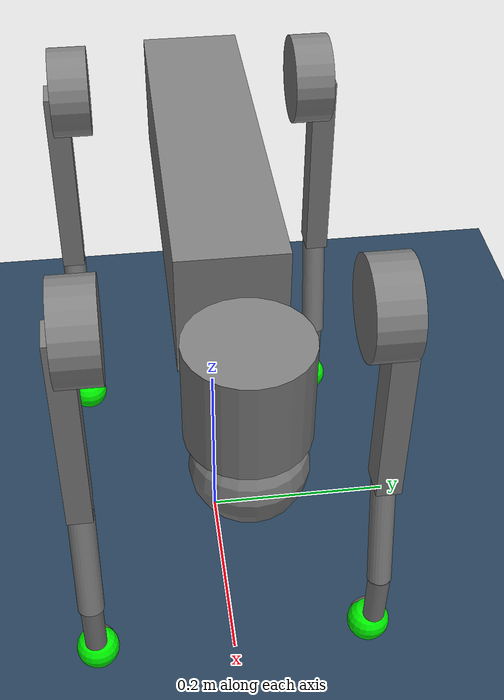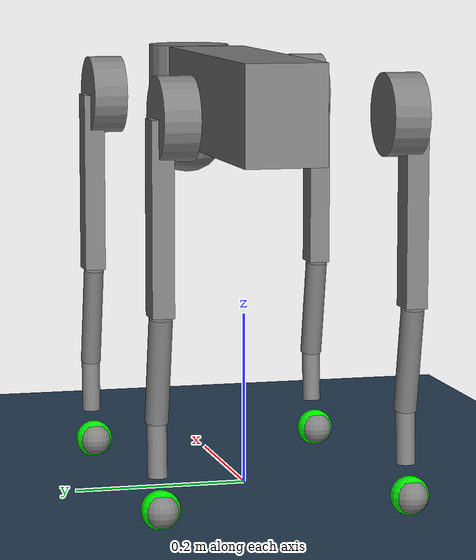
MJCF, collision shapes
<mujoco model="go2 scene">
  <include file="go2_simulation.xml"/>

  <statistic center="0 0 0.1" extent="0.8"/>

  <visual>
    <headlight diffuse="0.6 0.6 0.6" ambient="0.3 0.3 0.3" specular="0 0 0"/>
    <rgba haze="0.15 0.25 0.35 1"/>
    <global azimuth="-90" elevation="-30" offwidth="1920" offheight="1080"/>
  </visual>

  <asset>
    <texture type="skybox" builtin="gradient" rgb1="0.3 0.5 0.7" rgb2="0 0 0" width="512" height="3072"/>
    <texture type="2d" name="groundplane" builtin="checker" mark="edge" rgb1="0.2 0.3 0.4" rgb2="0.1 0.2 0.3"
      markrgb="0.8 0.8 0.8" width="300" height="300"/>
    <material name="groundplane" texture="groundplane" texuniform="true" texrepeat="5 5" reflectance="0.2"/>
  </asset>

  <worldbody>
    <light pos="0 0 1.5" dir="0 0 -1" directional="true"/>
    <geom name="floor" size="0 0 0.05" type="plane" material="groundplane"/>
  </worldbody>

  <sensor>
    <touch name="FL_touch" site="FL_force_site"/>
    <framepos name="FL_pos" objtype="site" objname="FL_posvel_site" reftype="geom" refname="floor"/>
    <framelinvel name="FL_linvel" objtype="site" objname="FL_posvel_site" reftype="geom" refname="floor"/>

    <touch name="FR_touch" site="FR_force_site"/>
    <framepos name="FR_pos" objtype="site" objname="FR_posvel_site" reftype="geom" refname="floor"/>
    <framelinvel name="FR_linvel" objtype="site" objname="FR_posvel_site" reftype="geom" refname="floor"/>

    <touch name="RL_touch" site="RL_force_site"/>
    <framepos name="RL_pos" objtype="site" objname="RL_posvel_site" reftype="geom" refname="floor"/>
    <framelinvel name="RL_linvel" objtype="site" objname="RL_posvel_site" reftype="geom" refname="floor"/>

    <touch name="RR_touch" site="RR_force_site"/>
    <framepos name="RR_pos" objtype="site" objname="RR_posvel_site" reftype="geom" refname="floor"/>
    <framelinvel name="RR_linvel" objtype="site" objname="RR_posvel_site" reftype="geom" refname="floor"/>
  </sensor>

</mujoco>

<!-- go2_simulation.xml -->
<mujoco model="go2">
  <compiler angle="radian" meshdir="assets" autolimits="false"/>

  <option cone="elliptic" impratio="100.0"
          integrator="Euler"
          iterations="200" ls_iterations="50" solver='Newton' tolerance="1e-6"
          ccd_iterations="1000" ccd_tolerance="1e-6"
          sdf_iterations="1000" sdf_initpoints="100">

    <flag   eulerdamp="enable"
            clampctrl="enable"
            warmstart="disable"
            frictionloss="enable"
            autoreset="disable"
            fwdinv="enable"
            midphase="disable"
            multiccd="enable"
            invdiscrete="disable">
    </flag>

  </option>
  <default>
    <default class="force_sensor_site">
      <site size="0.022" pos="0.002 0 -0.213" rgba="0 1 0 1" quat="1 0 0 0"/>
    </default>

    <default class="posvel_sensor_site">
      <site size="0.022" pos="0.002 0 -0.213" rgba="0 1 0 1" quat="1 0 0 0"/>
    </default>
    <default class="go2">
      <geom friction="0.6" margin="0.000" condim="1"/>
      <joint axis="0 1 0" damping="2.0" armature="0.01" frictionloss="0.2"/>
      <motor ctrlrange="-23.7 23.7" ctrllimited = "false"/>
      <default class="abduction">
        <joint axis="1 0 0" range="-1.0472 1.0472" limited = "false"/>
      </default>
      <default class="hip">
        <default class="front_hip">
          <joint range="-1.5708 3.4907" limited = "false"/>
        </default>
        <default class="back_hip">
          <joint range="-0.5236 4.5379" limited = "false"/>
        </default>
      </default>
      <default class="knee">
        <joint range="-2.7227 -0.83776" limited = "false"/>
        <motor ctrlrange="-45.43 45.43" ctrllimited = "false"/>
      </default>
      <default class="visual">
        <geom type="mesh" contype="0" conaffinity="0" group="2"/>
      </default>
      <default class="visual_geo">
        <geom contype="0" conaffinity="0" group="2"/>
      </default>
      <default class="collision">
        <geom group="3"/>
        <default class="foot">
          <geom size="0.020" pos="-0.002 0 -0.213" priority="1" condim="6"
            friction="1.0" solimp="0.015 1.0 0.02"/>
        </default>
      </default>
    </default>
  </default>

  <asset>
    <material name="metal" rgba=".9 .95 .95 1"/>
    <material name="black" rgba="0 0 0 1"/>
    <material name="white" rgba="1 1 1 1"/>
    <material name="gray" rgba="0.671705 0.692426 0.774270 1"/>

    <mesh file="base_0.obj"/>
    <mesh file="base_1.obj"/>
    <mesh file="base_2.obj"/>
    <mesh file="base_3.obj"/>
    <mesh file="base_4.obj"/>
    <mesh file="hip_0.obj"/>
    <mesh file="hip_1.obj"/>
    <mesh file="thigh_0.obj"/>
    <mesh file="thigh_1.obj"/>
    <mesh file="thigh_mirror_0.obj"/>
    <mesh file="thigh_mirror_1.obj"/>
    <mesh file="calf_0.obj"/>
    <mesh file="calf_1.obj"/>
    <mesh file="calf_mirror_0.obj"/>
    <mesh file="calf_mirror_1.obj"/>
    <mesh file="foot.obj"/>
  </asset>

  <worldbody>
    <body name="base" pos="0 0 0.445" childclass="go2">
      <inertial pos="0.021112 0 -0.005366" quat="-0.000543471 0.713435 -0.00173769 0.700719" mass="6.921"
        diaginertia="0.107027 0.0980771 0.0244531"/>
      <freejoint/>
      <geom mesh="base_0" material="black" class="visual"/>
      <geom mesh="base_1" material="black" class="visual"/>
      <geom mesh="base_2" material="black" class="visual"/>
      <geom mesh="base_3" material="white" class="visual"/>
      <geom mesh="base_4" material="gray" class="visual"/>
      <geom size="0.1881 0.04675 0.057" type="box" class="collision"/>
      <geom size="0.05 0.045" pos="0.285 0 0.01" type="cylinder" class="collision"/>
      <geom size="0.047" pos="0.293 0 -0.06" class="collision"/>
      <site name="imu" pos="-0.02557 0 0.04232"/>
      <body name="FL_hip" pos="0.1934 0.0465 0">
        <inertial pos="-0.0054 0.00194 -0.000105" quat="0.497014 0.499245 0.505462 0.498237" mass="0.678"
          diaginertia="0.00088403 0.000596003 0.000479967"/>
        <joint name="FL_hip_joint" class="abduction"/>
        <geom mesh="hip_0" material="metal" class="visual"/>
        <geom mesh="hip_1" material="gray" class="visual"/>
        <geom size="0.046 0.02" pos="0 0.08 0" quat="1 1 0 0" type="cylinder" class="collision"/>
        <body name="FL_thigh" pos="0 0.0955 0">
          <inertial pos="-0.00374 -0.0223 -0.0327" quat="0.829533 0.0847635 -0.0200632 0.551623" mass="1.152"
            diaginertia="0.00594973 0.00584149 0.000878787"/>
          <joint name="FL_thigh_joint" class="front_hip"/>
          <geom mesh="thigh_0" material="metal" class="visual"/>
          <geom mesh="thigh_1" material="gray" class="visual"/>
          <geom size="0.1065 0.01225 0.017" pos="0 0 -0.1065" quat="0.707107 0 0.707107 0" type="box" class="collision"/>
          <body name="FL_calf" pos="0 0 -0.213">
            <inertial pos="0.00629595 -0.000622121 -0.141417" quat="0.710672 0.00154099 -0.00450087 0.703508"
              mass="0.241352" diaginertia="0.0014901 0.00146356 5.31397e-05"/>
            <joint name="FL_calf_joint" class="knee"/>
            <geom mesh="calf_0" material="gray" class="visual"/>
            <geom mesh="calf_1" material="black" class="visual"/>
            <geom size="0.012 0.06" pos="0.008 0 -0.06" quat="0.994493 0 -0.104807 0" type="cylinder" class="collision"/>
            <geom size="0.011 0.0325" pos="0.02 0 -0.148" quat="0.999688 0 0.0249974 0" type="cylinder" class="collision"/>
            <geom pos="0 0 -0.213" mesh="foot" class="visual" material="black"/>
            <geom name="FL" class="foot"/>

            <site name="FL_posvel_site" class="posvel_sensor_site"/>
            <site name="FL_force_site" class="force_sensor_site"/>

          </body>
        </body>
      </body>
      <body name="FR_hip" pos="0.1934 -0.0465 0">
        <inertial pos="-0.0054 -0.00194 -0.000105" quat="0.498237 0.505462 0.499245 0.497014" mass="0.678"
          diaginertia="0.00088403 0.000596003 0.000479967"/>
        <joint name="FR_hip_joint" class="abduction"/>
        <geom mesh="hip_0" material="metal" class="visual" quat="4.63268e-05 1 0 0"/>
        <geom mesh="hip_1" material="gray" class="visual" quat="4.63268e-05 1 0 0"/>
        <geom size="0.046 0.02" pos="0 -0.08 0" quat="0.707107 0.707107 0 0" type="cylinder" class="collision"/>
        <body name="FR_thigh" pos="0 -0.0955 0">
          <inertial pos="-0.00374 0.0223 -0.0327" quat="0.551623 -0.0200632 0.0847635 0.829533" mass="1.152"
            diaginertia="0.00594973 0.00584149 0.000878787"/>
          <joint name="FR_thigh_joint" class="front_hip"/>
          <geom mesh="thigh_mirror_0" material="metal" class="visual"/>
          <geom mesh="thigh_mirror_1" material="gray" class="visual"/>
          <geom size="0.1065 0.01225 0.017" pos="0 0 -0.1065" quat="0.707107 0 0.707107 0" type="box" class="collision"/>
          <body name="FR_calf" pos="0 0 -0.213">
            <inertial pos="0.00629595 0.000622121 -0.141417" quat="0.703508 -0.00450087 0.00154099 0.710672"
              mass="0.241352" diaginertia="0.0014901 0.00146356 5.31397e-05"/>
            <joint name="FR_calf_joint" class="knee"/>
            <geom mesh="calf_mirror_0" material="gray" class="visual"/>
            <geom mesh="calf_mirror_1" material="black" class="visual"/>
            <geom size="0.013 0.06" pos="0.01 0 -0.06" quat="0.995004 0 -0.0998334 0" type="cylinder" class="collision"/>
            <geom size="0.011 0.0325" pos="0.02 0 -0.148" quat="0.999688 0 0.0249974 0" type="cylinder" class="collision"/>
            <geom pos="0 0 -0.213" mesh="foot" class="visual" material="black"/>
            <geom name="FR" class="foot"/>

            <site name="FR_posvel_site" class="posvel_sensor_site"/>
            <site name="FR_force_site" class="force_sensor_site"/>

          </body>
        </body>
      </body>
      <body name="RL_hip" pos="-0.1934 0.0465 0">
        <inertial pos="0.0054 0.00194 -0.000105" quat="0.505462 0.498237 0.497014 0.499245" mass="0.678"
          diaginertia="0.00088403 0.000596003 0.000479967"/>
        <joint name="RL_hip_joint" class="abduction"/>
        <geom mesh="hip_0" material="metal" class="visual" quat="4.63268e-05 0 1 0"/>
        <geom mesh="hip_1" material="gray" class="visual" quat="4.63268e-05 0 1 0"/>
        <geom size="0.046 0.02" pos="0 0.08 0" quat="0.707107 0.707107 0 0" type="cylinder" class="collision"/>
        <body name="RL_thigh" pos="0 0.0955 0">
          <inertial pos="-0.00374 -0.0223 -0.0327" quat="0.829533 0.0847635 -0.0200632 0.551623" mass="1.152"
            diaginertia="0.00594973 0.00584149 0.000878787"/>
          <joint name="RL_thigh_joint" class="back_hip"/>
          <geom mesh="thigh_0" material="metal" class="visual"/>
          <geom mesh="thigh_1" material="gray" class="visual"/>
          <geom size="0.1065 0.01225 0.017" pos="0 0 -0.1065" quat="0.707107 0 0.707107 0" type="box" class="collision"/>
          <body name="RL_calf" pos="0 0 -0.213">
            <inertial pos="0.00629595 -0.000622121 -0.141417" quat="0.710672 0.00154099 -0.00450087 0.703508"
              mass="0.241352" diaginertia="0.0014901 0.00146356 5.31397e-05"/>
            <joint name="RL_calf_joint" class="knee"/>
            <geom mesh="calf_0" material="gray" class="visual"/>
            <geom mesh="calf_1" material="black" class="visual"/>
            <geom size="0.013 0.06" pos="0.01 0 -0.06" quat="0.995004 0 -0.0998334 0" type="cylinder" class="collision"/>
            <geom size="0.011 0.0325" pos="0.02 0 -0.148" quat="0.999688 0 0.0249974 0" type="cylinder" class="collision"/>
            <geom pos="0 0 -0.213" mesh="foot" class="visual" material="black"/>
            <geom name="RL" class="foot"/>

            <site name="RL_posvel_site" class="posvel_sensor_site"/>
            <site name="RL_force_site" class="force_sensor_site"/>

          </body>
        </body>
      </body>
      <body name="RR_hip" pos="-0.1934 -0.0465 0">
        <inertial pos="0.0054 -0.00194 -0.000105" quat="0.499245 0.497014 0.498237 0.505462" mass="0.678"
          diaginertia="0.00088403 0.000596003 0.000479967"/>
        <joint name="RR_hip_joint" class="abduction"/>
        <geom mesh="hip_0" material="metal" class="visual" quat="2.14617e-09 4.63268e-05 4.63268e-05 -1"/>
        <geom mesh="hip_1" material="gray" class="visual" quat="2.14617e-09 4.63268e-05 4.63268e-05 -1"/>
        <geom size="0.046 0.02" pos="0 -0.08 0" quat="0.707107 0.707107 0 0" type="cylinder" class="collision"/>
        <body name="RR_thigh" pos="0 -0.0955 0">
          <inertial pos="-0.00374 0.0223 -0.0327" quat="0.551623 -0.0200632 0.0847635 0.829533" mass="1.152"
            diaginertia="0.00594973 0.00584149 0.000878787"/>
          <joint name="RR_thigh_joint" class="back_hip"/>
          <geom mesh="thigh_mirror_0" material="metal" class="visual"/>
          <geom mesh="thigh_mirror_1" material="gray" class="visual"/>
          <geom size="0.1065 0.01225 0.017" pos="0 0 -0.1065" quat="0.707107 0 0.707107 0" type="box" class="collision"/>
          <body name="RR_calf" pos="0 0 -0.213">
            <inertial pos="0.00629595 0.000622121 -0.141417" quat="0.703508 -0.00450087 0.00154099 0.710672"
              mass="0.241352" diaginertia="0.0014901 0.00146356 5.31397e-05"/>
            <joint name="RR_calf_joint" class="knee"/>
            <geom mesh="calf_mirror_0" material="gray" class="visual"/>
            <geom mesh="calf_mirror_1" material="black" class="visual"/>
            <geom size="0.013 0.06" pos="0.01 0 -0.06" quat="0.995004 0 -0.0998334 0" type="cylinder" class="collision"/>
            <geom size="0.011 0.0325" pos="0.02 0 -0.148" quat="0.999688 0 0.0249974 0" type="cylinder" class="collision"/>
            <geom pos="0 0 -0.213" mesh="foot" class="visual" material="black"/>
            <geom name="RR" class="foot"/>

            <site name="RR_posvel_site" class="posvel_sensor_site"/>
            <site name="RR_force_site" class="force_sensor_site"/>

          </body>
        </body>
      </body>
    </body>
  </worldbody>
  <actuator>
    <motor class="abduction" name="FR_hip" joint="FR_hip_joint"/>
    <motor class="hip" name="FR_thigh" joint="FR_thigh_joint"/>
    <motor class="knee" name="FR_calf" joint="FR_calf_joint"/>
    <motor class="abduction" name="FL_hip" joint="FL_hip_joint"/>
    <motor class="hip" name="FL_thigh" joint="FL_thigh_joint"/>
    <motor class="knee" name="FL_calf" joint="FL_calf_joint"/>
    <motor class="abduction" name="RR_hip" joint="RR_hip_joint"/>
    <motor class="hip" name="RR_thigh" joint="RR_thigh_joint"/>
    <motor class="knee" name="RR_calf" joint="RR_calf_joint"/>
    <motor class="abduction" name="RL_hip" joint="RL_hip_joint"/>
    <motor class="hip" name="RL_thigh" joint="RL_thigh_joint"/>
    <motor class="knee" name="RL_calf" joint="RL_calf_joint"/>
  </actuator>

  <keyframe>
    <key name="home" qpos="0 0 0.2800 1 0 0 0 0 0.9 -1.8 0 0.9 -1.8 0 0.9 -1.8 0 0.9 -1.8"
      ctrl="0 0.9 -1.8 0 0.9 -1.8 0 0.9 -1.8 0 0.9 -1.8"/>
  </keyframe>
</mujoco>
